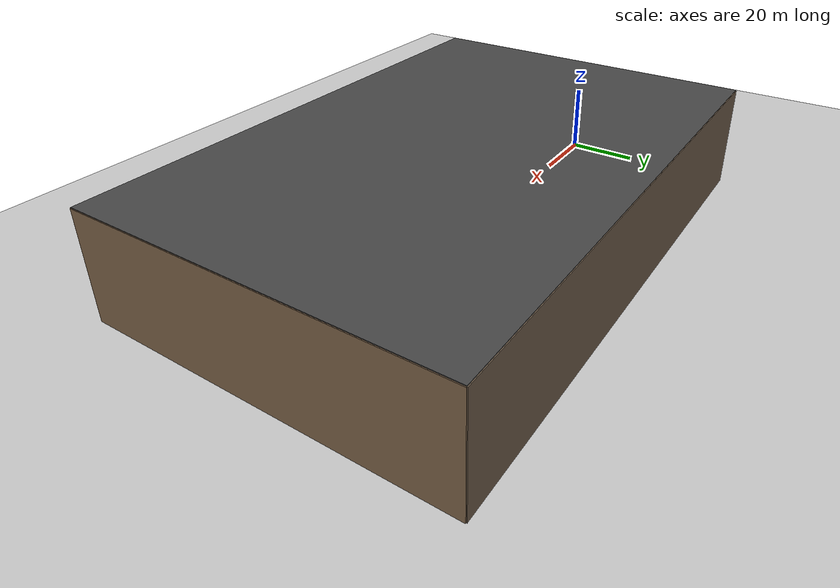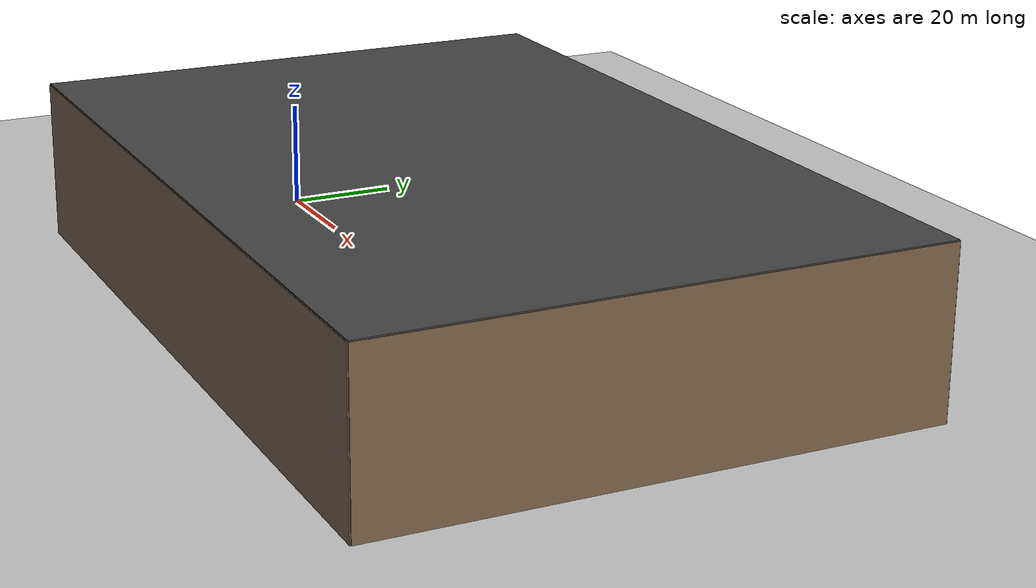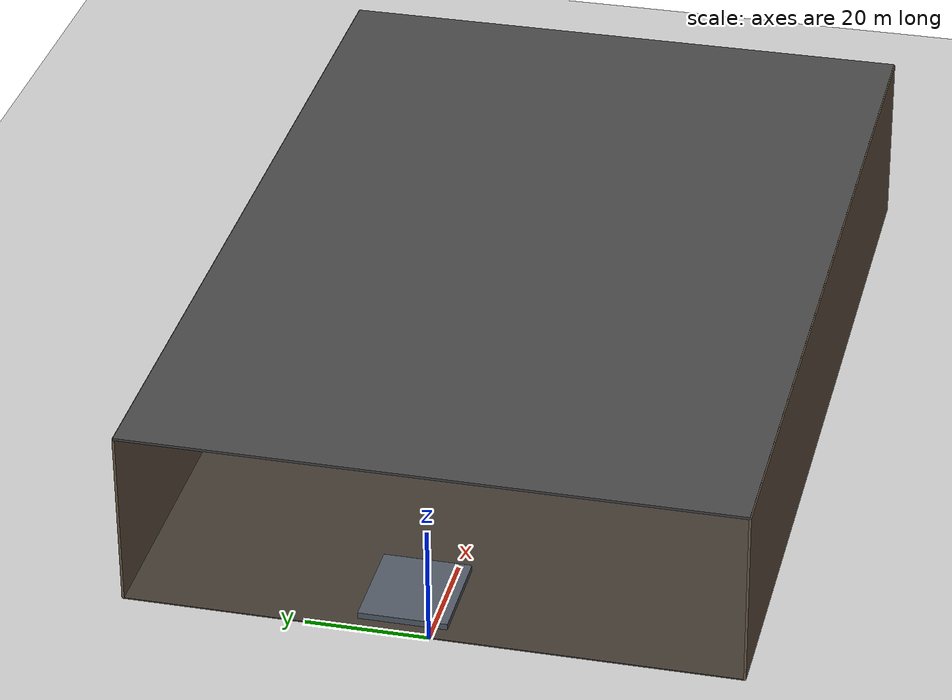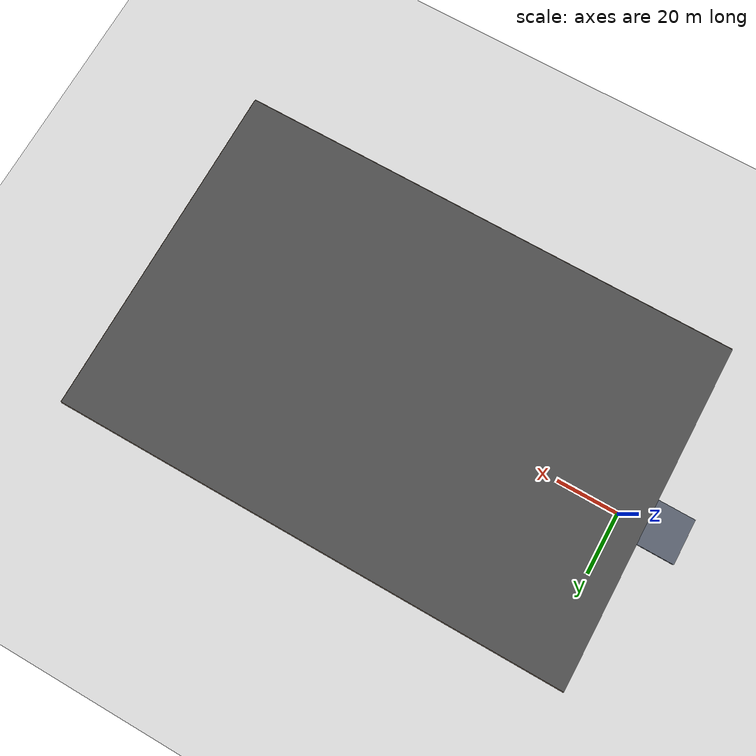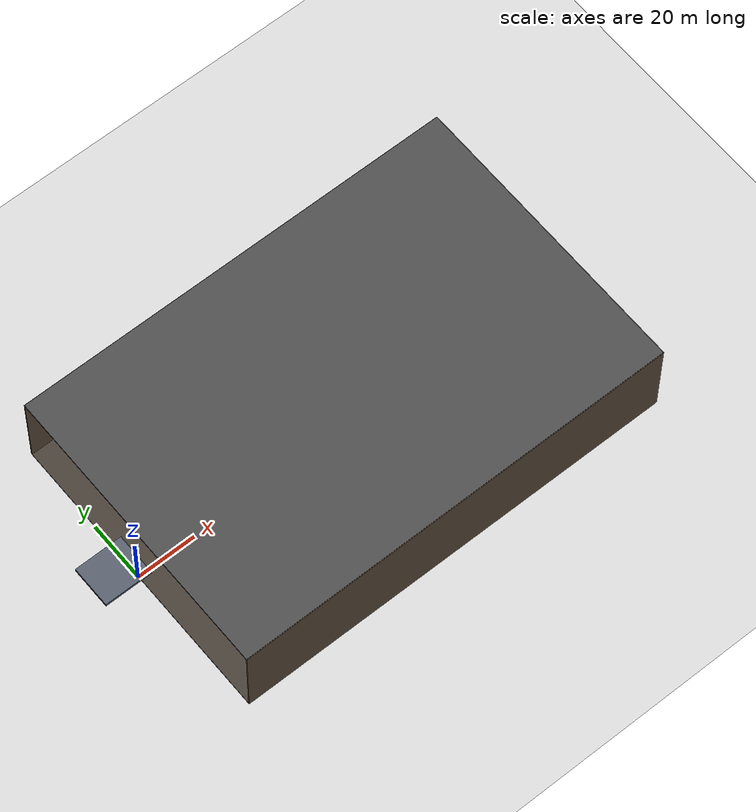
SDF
<?xml version="1.0"?>
<sdf version="1.6">
  <world name="goaf_large_platform">
    <include><uri>model://sun</uri></include>
    <include><uri>model://ground_plane</uri></include>

    <scene>
      <ambient>0.35 0.35 0.35 1</ambient>
      <background>0.06 0.07 0.08 1</background>
      <shadows>true</shadows>
    </scene>

    <gui fullscreen="0">
      <camera name="overview">
        <pose>-35 -80 48 0 0.38 0.78</pose>
        <view_controller>orbit</view_controller>
      </camera>
    </gui>

    <!-- Outside platform: top surface at z=15 m, centered on the open
         entrance. The vehicle starts 1.15 m above it at x=-8 m. -->
    <model name="entrance_platform">
      <static>true</static>
      <pose>-8 0 14.5 0 0 0</pose>
      <link name="link">
        <collision name="collision">
          <geometry><box><size>16 14 1</size></box></geometry>
        </collision>
        <visual name="visual">
          <geometry><box><size>16 14 1</size></box></geometry>
          <material>
            <ambient>0.22 0.24 0.28 1</ambient>
            <diffuse>0.32 0.35 0.40 1</diffuse>
          </material>
        </visual>
      </link>
    </model>

    <!-- Open entrance at x=0. Internal dimensions are exactly
         150 m (x) by 100 m (y) by 30 m (z). -->
    <model name="left_wall">
      <static>true</static>
      <pose>75 50 15 0 0 0</pose>
      <link name="link">
        <collision name="collision">
          <geometry><box><size>150 0.4 30</size></box></geometry>
        </collision>
        <visual name="visual">
          <geometry><box><size>150 0.4 30</size></box></geometry>
          <material>
            <ambient>0.30 0.25 0.20 1</ambient>
            <diffuse>0.42 0.35 0.28 1</diffuse>
          </material>
        </visual>
      </link>
    </model>

    <model name="right_wall">
      <static>true</static>
      <pose>75 -50 15 0 0 0</pose>
      <link name="link">
        <collision name="collision">
          <geometry><box><size>150 0.4 30</size></box></geometry>
        </collision>
        <visual name="visual">
          <geometry><box><size>150 0.4 30</size></box></geometry>
          <material>
            <ambient>0.30 0.25 0.20 1</ambient>
            <diffuse>0.42 0.35 0.28 1</diffuse>
          </material>
        </visual>
      </link>
    </model>

    <model name="far_wall">
      <static>true</static>
      <pose>150 0 15 0 0 0</pose>
      <link name="link">
        <collision name="collision">
          <geometry><box><size>0.4 100 30</size></box></geometry>
        </collision>
        <visual name="visual">
          <geometry><box><size>0.4 100 30</size></box></geometry>
          <material>
            <ambient>0.34 0.27 0.20 1</ambient>
            <diffuse>0.48 0.38 0.28 1</diffuse>
          </material>
        </visual>
      </link>
    </model>

    <model name="ceiling">
      <static>true</static>
      <pose>75 0 30 0 0 0</pose>
      <link name="link">
        <collision name="collision">
          <geometry><box><size>150 100 0.4</size></box></geometry>
        </collision>
        <visual name="visual">
          <geometry><box><size>150 100 0.4</size></box></geometry>
          <material>
            <ambient>0.20 0.20 0.20 1</ambient>
            <diffuse>0.28 0.28 0.28 1</diffuse>
          </material>
        </visual>
      </link>
    </model>

    <model name="chamber_floor">
      <static>true</static>
      <pose>75 0 0.1 0 0 0</pose>
      <link name="link">
        <collision name="collision">
          <geometry><box><size>150 100 0.2</size></box></geometry>
        </collision>
        <visual name="visual">
          <geometry><box><size>150 100 0.2</size></box></geometry>
          <material>
            <ambient>0.18 0.16 0.14 1</ambient>
            <diffuse>0.26 0.23 0.20 1</diffuse>
          </material>
        </visual>
      </link>
    </model>

    <!-- Sparse centerline reference posts make progress visible in Gazebo
         without obstructing the planned straight flight corridor. -->
    <model name="marker_050">
      <static>true</static><pose>50 20 15 0 0 0</pose>
      <link name="link">
        <collision name="collision"><geometry><cylinder><radius>0.5</radius><length>30</length></cylinder></geometry></collision>
        <visual name="visual"><geometry><cylinder><radius>0.5</radius><length>30</length></cylinder></geometry></visual>
      </link>
    </model>
    <model name="marker_100">
      <static>true</static><pose>100 -20 15 0 0 0</pose>
      <link name="link">
        <collision name="collision"><geometry><cylinder><radius>0.5</radius><length>30</length></cylinder></geometry></collision>
        <visual name="visual"><geometry><cylinder><radius>0.5</radius><length>30</length></cylinder></geometry></visual>
      </link>
    </model>
  </world>
</sdf>
